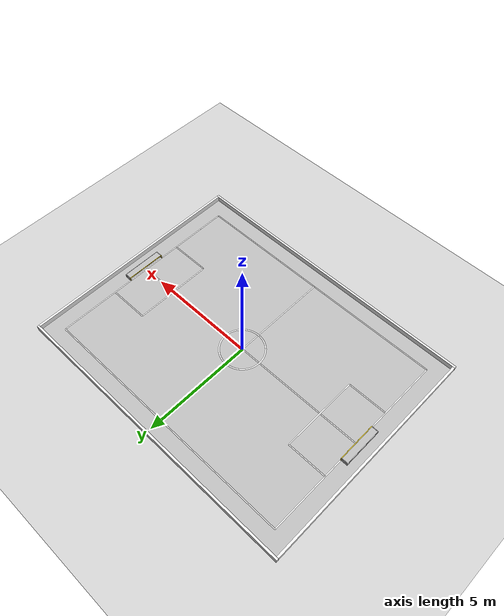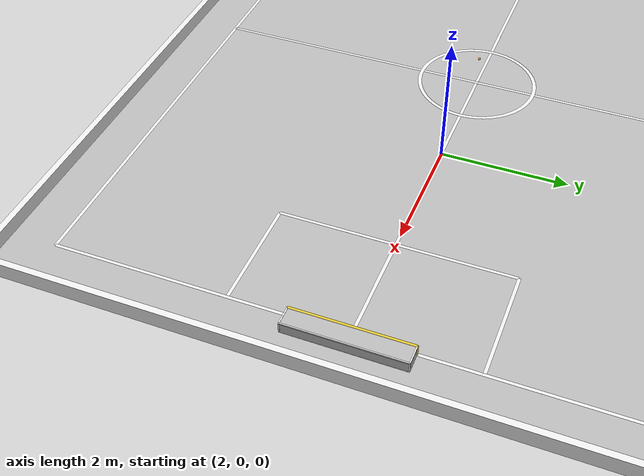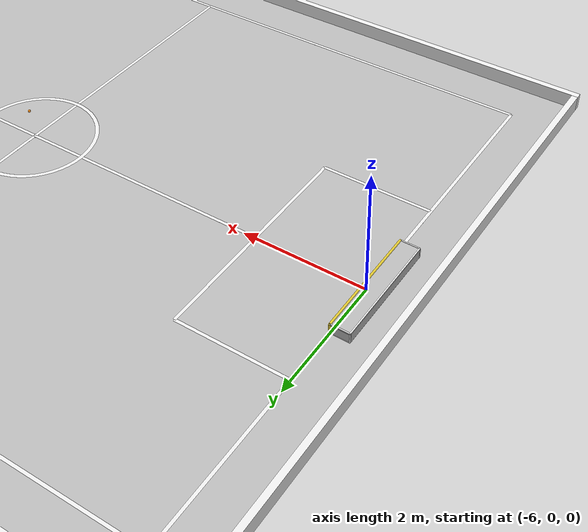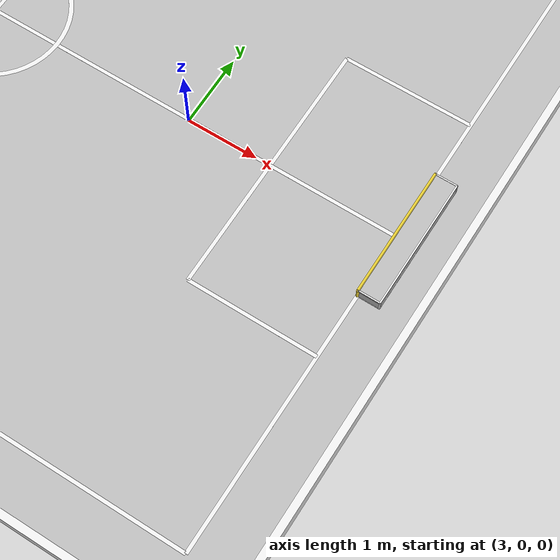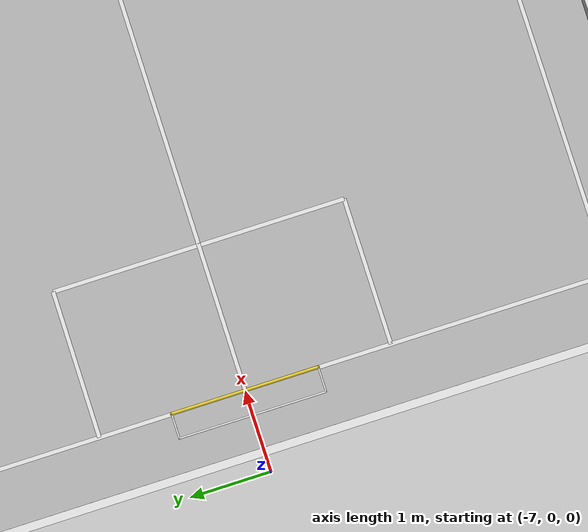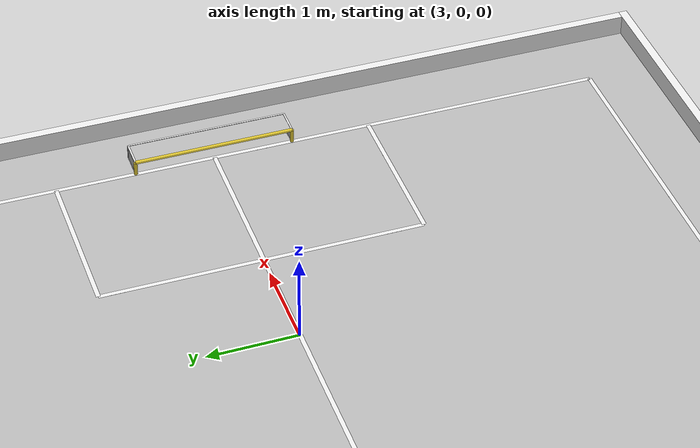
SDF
<?xml version="1.0" ?>
<sdf version="1.4">
  <world name="default">
    <include>
      <uri>model://ground_plane</uri>
    </include>
    <include>
      <uri>model://sun</uri>
    </include>
    <include>
      <uri>model://ssl_field</uri>
      <name>ssl_field_A</name>
      <pose>0 0 0 0 0 0</pose>
    </include>

    <!-- use ctrl+k+u to uncomment selected block
    use ctrl+k+c to comment selected block -->

    <include>
      <uri>model://ssl_goal</uri>
      <name>ssl_goal_1</name>
      <pose>-6 0 0 0 0 3.14</pose>
    </include>
    <include>
      <uri>model://ssl_goal</uri>
      <name>ssl_goal_2</name>
      <pose>6 0 0 0 0 0</pose>
    </include>
    <include>
      <uri>model://ssl_ball</uri>
      <name>ssl_ball_1</name>
      <pose>0 0 0.5 0 0 0</pose>
    </include>
  </world>
</sdf>

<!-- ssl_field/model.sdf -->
<sdf version="1.5">
  <model name="Robocup SSL Field">
    <static>true</static>
    <link name="field">
      <pose>0 0 0.01 0 0 0</pose>
      <collision name="collision">
        <geometry>
          <plane>
            <normal>0 0 1</normal>
            <size>13.40 10.40</size>
          </plane>
        </geometry>
        <surface>
          <friction>
            <ode>
              <mu>100</mu>
              <mu2>50</mu2>
            </ode>
          </friction>
        </surface>
      </collision>
      <visual name="carpet">
        <cast_shadows>false</cast_shadows>
        <geometry>
          <plane>
            <normal>0 0 1</normal>
            <size>13.40 10.40</size>
          </plane>
        </geometry>
        <material>
          <script>
            <uri>model://robocup09_spl_field/materials/scripts/</uri>
            <uri>model://robocup09_spl_field/materials/textures/</uri>
            <name>RoboCup/Carpet</name>
          </script>
        </material>
      </visual>
      <visual name="sideline_1">
        <pose>0 4.5 0.011 0 0 0</pose>
        <cast_shadows>false</cast_shadows>
        <geometry>
          <plane>
            <normal>0 0 1</normal>
            <size>12.00 0.05</size>
          </plane>
        </geometry>
        <material>
          <script>
            <uri>file://media/materials/scripts/gazebo.material</uri>
            <name>Gazebo/White</name>
          </script>
        </material>
      </visual>
      <visual name="sideline_2">
        <pose>0 -4.5 0.011 0 0 0</pose>
        <cast_shadows>false</cast_shadows>
        <geometry>
          <plane>
            <normal>0 0 1</normal>
            <size>12.00 0.05</size>
          </plane>
        </geometry>
        <material>
          <script>
            <uri>file://media/materials/scripts/gazebo.material</uri>
            <name>Gazebo/White</name>
          </script>
        </material>
      </visual>
      <visual name="sideline_mid">
        <pose>0 0 0.011 0 0 0</pose>
        <cast_shadows>false</cast_shadows>
        <geometry>
          <plane>
            <normal>0 0 1</normal>
            <size>12.00 0.05</size>
          </plane>
        </geometry>
        <material>
          <script>
            <uri>file://media/materials/scripts/gazebo.material</uri>
            <name>Gazebo/White</name>
          </script>
        </material>
      </visual>
      <visual name="endline_1">
        <pose>6 0 0.011 0 0 0</pose>
        <cast_shadows>false</cast_shadows>
        <geometry>
          <plane>
            <normal>0 0 1</normal>
            <size>0.05 9.00</size>
          </plane>
        </geometry>
        <material>
          <script>
            <uri>file://media/materials/scripts/gazebo.material</uri>
            <name>Gazebo/White</name>
          </script>
        </material>
      </visual>
      <visual name="endline_2">
        <pose>-6 0 0.011 0 0 0</pose>
        <cast_shadows>false</cast_shadows>
        <geometry>
          <plane>
            <normal>0 0 1</normal>
            <size>0.05 9.00</size>
          </plane>
        </geometry>
        <material>
          <script>
            <uri>file://media/materials/scripts/gazebo.material</uri>
            <name>Gazebo/White</name>
          </script>
        </material>
      </visual>
      <visual name="halfway_line">
        <pose>0 0 0.011 0 0 0</pose>
        <cast_shadows>false</cast_shadows>
        <geometry>
          <plane>
            <normal>0 0 1</normal>
            <size>0.05 9.00</size>
          </plane>
        </geometry>
        <material>
          <script>
            <uri>file://media/materials/scripts/gazebo.material</uri>
            <name>Gazebo/White</name>
          </script>
        </material>
      </visual>
      <visual name="area_1_line_a">
        <pose>-4.2 0 0.011 0 0 0</pose>
        <cast_shadows>false</cast_shadows>
        <geometry>
          <plane>
            <normal>0 0 1</normal>
            <size>0.05 3.6</size>
          </plane>
        </geometry>
        <material>
          <script>
            <uri>file://media/materials/scripts/gazebo.material</uri>
            <name>Gazebo/White</name>
          </script>
        </material>
      </visual>
      <visual name="area_2_line_a">
        <pose>-5.1 1.80 0.011 0 0 0</pose>
        <cast_shadows>false</cast_shadows>
        <geometry>
          <plane>
            <normal>0 0 1</normal>
            <size>1.80 0.05</size>
          </plane>
        </geometry>
        <material>
          <script>
            <uri>file://media/materials/scripts/gazebo.material</uri>
            <name>Gazebo/White</name>
          </script>
        </material>
      </visual>
      <visual name="area_3_line_a">
        <pose>-5.1 -1.80 0.011 0 0 0</pose>
        <cast_shadows>false</cast_shadows>
        <geometry>
          <plane>
            <normal>0 0 1</normal>
            <size>1.80 0.05</size>
          </plane>
        </geometry>
        <material>
          <script>
            <uri>file://media/materials/scripts/gazebo.material</uri>
            <name>Gazebo/White</name>
          </script>
        </material>
      </visual>
      <visual name="area_1_line_b">
        <pose>4.20 0 0.011 0 0 0</pose>
        <cast_shadows>false</cast_shadows>
        <geometry>
          <plane>
            <normal>0 0 1</normal>
            <size>0.05 3.6</size>
          </plane>
        </geometry>
        <material>
          <script>
            <uri>file://media/materials/scripts/gazebo.material</uri>
            <name>Gazebo/White</name>
          </script>
        </material>
      </visual>
      <visual name="area_2_line_b">
        <pose>5.1 1.80 0.011 0 0 0</pose>
        <cast_shadows>false</cast_shadows>
        <geometry>
          <plane>
            <normal>0 0 1</normal>
            <size>1.80 0.05</size>
          </plane>
        </geometry>
        <material>
          <script>
            <uri>file://media/materials/scripts/gazebo.material</uri>
            <name>Gazebo/White</name>
          </script>
        </material>
      </visual>
      <visual name="area_3_line_b">
        <pose>5.1 -1.80 0.011 0 0 0</pose>
        <cast_shadows>false</cast_shadows>
        <geometry>
          <plane>
            <normal>0 0 1</normal>
            <size>1.80 0.05</size>
          </plane>
        </geometry>
        <material>
          <script>
            <uri>file://media/materials/scripts/gazebo.material</uri>
            <name>Gazebo/White</name>
          </script>
        </material>
      </visual>

      <visual name="center_point">
        <pose>0 0 0.01 0 0 0</pose>
        <cast_shadows>false</cast_shadows>
        <geometry>
          <cylinder>
            <radius>0.05</radius>
            <length>0.0005</length>
          </cylinder>
        </geometry>
        <material>
          <script>
            <uri>file://media/materials/scripts/gazebo.material</uri>
            <name>Gazebo/White</name>
          </script>
        </material>
      </visual>
      <visual name="center_circle">
        <pose>0 0 0.005 0 0 0</pose>
        <cast_shadows>false</cast_shadows>
        <geometry>
          <mesh>
            <scale>1.3 1.3 0.75</scale>
            <uri>model://robocup14_spl_field/meshes/circle.dae</uri>
          </mesh>
        </geometry>
        <material>
          <script>
            <uri>file://media/materials/scripts/gazebo.material</uri>
            <name>Gazebo/White</name>
          </script>
        </material>
      </visual>
    </link>
    <link name="left_barrier">
      <pose>-6.75 0 0 0 0 0</pose>
      <collision name="collision">
        <geometry>
          <box>
            <size>0.1 10.4 0.5</size>
          </box>
        </geometry>
      </collision>
      <visual name="visual">
        <geometry>
          <box>
            <size>0.1 10.4 0.5</size>
          </box>
        </geometry>
        <material>
          <script>
            <uri>file://media/materials/scripts/gazebo.material</uri>
            <name>Gazebo/White</name>
          </script>
        </material>
      </visual>
    </link>
    <link name="right_barrier">
      <pose>6.75 0 0 0 0 0</pose>
      <collision name="collision">
        <geometry>
          <box>
            <size>0.1 10.4 0.5</size>
          </box>
        </geometry>
      </collision>
      <visual name="visual">
        <geometry>
          <box>
            <size>0.1 10.4 0.5</size>
          </box>
        </geometry>
        <material>
          <script>
            <uri>file://media/materials/scripts/gazebo.material</uri>
            <name>Gazebo/White</name>
          </script>
        </material>
      </visual>
    </link>
    <link name="front_barrier">
      <pose>0 5.25 0 0 0 0</pose>
      <collision name="collision">
        <geometry>
          <box>
            <size>13.6 0.1 0.5</size>
          </box>
        </geometry>
      </collision>
      <visual name="visual">
        <geometry>
          <box>
            <size>13.6 0.1 0.5</size>
          </box>
        </geometry>
        <material>
          <script>
            <uri>file://media/materials/scripts/gazebo.material</uri>
            <name>Gazebo/White</name>
          </script>
        </material>
      </visual>
    </link>
    <link name="back_barrier">
      <pose>0 -5.25 0 0 0 0</pose>
      <collision name="collision">
        <geometry>
          <box>
            <size>13.6 0.1 0.5</size>
          </box>
        </geometry>
      </collision>
      <visual name="visual">
        <geometry>
          <box>
            <size>13.6 0.1 0.5</size>
          </box>
        </geometry>
        <material>
          <script>
            <uri>file://media/materials/scripts/gazebo.material</uri>
            <name>Gazebo/White</name>
          </script>
        </material>
      </visual>
    </link>
  </model>
</sdf>

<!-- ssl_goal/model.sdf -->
<sdf version="1.5">
  <model name="SSL Fields">
    <static>true</static>
    <link name="left_post">
      <pose>0 0.9 0.09 0 0 0</pose>
      <collision name="collision">
        <geometry>
          <cylinder>
            <radius>0.02</radius>
            <length>0.18</length>
          </cylinder>
        </geometry>
      </collision>
      <visual name="visual">
        <geometry>
          <cylinder>
            <radius>0.02</radius>
            <length>0.18</length>
          </cylinder>
        </geometry>
        <material>
          <script>
            <uri>file://media/materials/scripts/gazebo.material</uri>
            <name>Gazebo/ZincYellow</name>
          </script>
        </material>
      </visual>
    </link>
    <link name="left_support_horiz_lower">
      <pose>0.15 0.9 0.01 0 0 0</pose>
      <collision name="collision">
        <geometry>
          <box>
            <size>0.3 0.02 0.02</size>
          </box>
        </geometry>
      </collision>
      <visual name="visual">
        <geometry>
          <box>
            <size>0.3 0.02 0.02</size>
          </box>
        </geometry>
        <material>
          <script>
            <uri>file://media/materials/scripts/gazebo.material</uri>
            <name>Gazebo/White</name>
          </script>
        </material>
      </visual>
    </link>
    <link name="left_support_horiz_upper">
      <pose>0.15 0.9 0.18 0 0 0</pose>
      <collision name="collision">
        <geometry>
          <box>
            <size>0.3 0.02 0.02</size>
          </box>
        </geometry>
      </collision>
      <visual name="visual">
        <geometry>
          <box>
            <size>0.3 0.02 0.02</size>
          </box>
        </geometry>
        <material>
          <script>
            <uri>file://media/materials/scripts/gazebo.material</uri>
            <name>Gazebo/White</name>
          </script>
        </material>
      </visual>
    </link>
    <link name="left_support_vertical">
      <pose>0.3 0.9 0.09 0 1.578 0</pose>
      <collision name="collision">
        <geometry>
          <box>
            <size>0.18 0.02 0.02</size>
          </box>
        </geometry>
      </collision>
      <visual name="visual">
        <geometry>
          <box>
            <size>0.18 0.02 0.02</size>
          </box>
        </geometry>
        <material>
          <script>
            <uri>file://media/materials/scripts/gazebo.material</uri>
            <name>Gazebo/White</name>
          </script>
        </material>
      </visual>
    </link>
    <link name="right_support_horiz_lower">
      <pose>0.15 -0.9 0.01 0 0 0</pose>
      <collision name="collision">
        <geometry>
          <box>
            <size>0.3 0.02 0.02</size>
          </box>
        </geometry>
      </collision>
      <visual name="visual">
        <geometry>
          <box>
            <size>0.3 0.02 0.02</size>
          </box>
        </geometry>
        <material>
          <script>
            <uri>file://media/materials/scripts/gazebo.material</uri>
            <name>Gazebo/White</name>
          </script>
        </material>
      </visual>
    </link>
    <link name="right_support_horiz_upper">
      <pose>0.15 -0.9 0.18 0 0 0</pose>
      <collision name="collision">
        <geometry>
          <box>
            <size>0.3 0.02 0.02</size>
          </box>
        </geometry>
      </collision>
      <visual name="visual">
        <geometry>
          <box>
            <size>0.3 0.02 0.02</size>
          </box>
        </geometry>
        <material>
          <script>
            <uri>file://media/materials/scripts/gazebo.material</uri>
            <name>Gazebo/White</name>
          </script>
        </material>
      </visual>
    </link>
    <link name="right_support_vertical">
      <pose>0.3 -0.9 0.09 0 1.578 0</pose>
      <collision name="collision">
        <geometry>
          <box>
            <size>0.18 0.02 0.02</size>
          </box>
        </geometry>
      </collision>
      <visual name="visual">
        <geometry>
          <box>
            <size>0.18 0.02 0.02</size>
          </box>
        </geometry>
        <material>
          <script>
            <uri>file://media/materials/scripts/gazebo.material</uri>
            <name>Gazebo/White</name>
          </script>
        </material>
      </visual>
    </link>
    <link name="center_support_horiz_lower">
      <pose>0.3 0 0.01 0 1.578 0</pose>
      <collision name="collision">
        <geometry>
          <box>
            <size>0.02 1.8 0.02</size>
          </box>
        </geometry>
      </collision>
      <visual name="visual">
        <geometry>
          <box>
            <size>0.02 1.8 0.02</size>
          </box>
        </geometry>
        <material>
          <script>
            <uri>file://media/materials/scripts/gazebo.material</uri>
            <name>Gazebo/White</name>
          </script>
        </material>
      </visual>
    </link>
    <link name="center_support_horiz_upper">
      <pose>0.3 0 0.18 0 1.578 0</pose>
      <collision name="collision">
        <geometry>
          <box>
            <size>0.02 1.8 0.02</size>
          </box>
        </geometry>
      </collision>
      <visual name="visual">
        <geometry>
          <box>
            <size>0.02 1.8 0.02</size>
          </box>
        </geometry>
        <material>
          <script>
            <uri>file://media/materials/scripts/gazebo.material</uri>
            <name>Gazebo/White</name>
          </script>
        </material>
      </visual>
    </link>
    <link name="right_post">
      <pose>0 -0.9 0.09 0 0 0</pose>
      <collision name="collision">
        <geometry>
          <cylinder>
            <radius>0.02</radius>
            <length>0.18</length>
          </cylinder>
        </geometry>
      </collision>
      <visual name="visual">
        <geometry>
          <cylinder>
            <radius>0.02</radius>
            <length>0.18</length>
          </cylinder>
        </geometry>
        <material>
          <script>
            <uri>file://media/materials/scripts/gazebo.material</uri>
            <name>Gazebo/ZincYellow</name>
          </script>
        </material>
      </visual>
    </link>
    <link name="crossbar">
      <pose>0 0 0.18 1.57 1.57 0</pose>
      <collision name="collision">
        <geometry>
          <cylinder>
            <radius>0.02</radius>
            <length>1.8</length>
          </cylinder>
        </geometry>
      </collision>
      <visual name="visual">
        <geometry>
          <cylinder>
            <radius>0.02</radius>
            <length>1.8</length>
          </cylinder>
        </geometry>
        <material>
          <script>
            <uri>file://media/materials/scripts/gazebo.material</uri>
            <name>Gazebo/ZincYellow</name>
          </script>
        </material>
      </visual>
    </link>
    <link name="upper_net">
      <pose>0.15 0 0.18 0 0 0</pose>
      <collision name="collision">
        <geometry>
          <box>
            <size>0.3 1.8 0.01</size>
          </box>
        </geometry>
      </collision>
      <visual name="visual">
        <geometry>
          <box>
            <size>0.3 1.8 0.01</size>
          </box>
        </geometry>
        <material>
          <script>
            <uri>model://robocup09_spl_field/materials/scripts/</uri>
            <uri>model://robocup09_spl_field/materials/textures/</uri>
            <name>RoboCup/Net</name>
          </script>
        </material>
      </visual>
    </link>
    <link name="center_net">
      <pose>0.3 0 0.09 0 0 0</pose>
      <collision name="collision">
        <geometry>
          <box>
            <size>0.01 1.8 0.18</size>
          </box>
        </geometry>
      </collision>
      <visual name="visual">
        <geometry>
          <box>
            <size>0.01 1.8 0.18</size>
          </box>
        </geometry>
        <material>
          <script>
            <uri>model://robocup09_spl_field/materials/scripts/</uri>
            <uri>model://robocup09_spl_field/materials/textures/</uri>
            <name>RoboCup/Net</name>
          </script>
        </material>
      </visual>
    </link>
    <link name="left_net">
      <pose>0.15 0.9 0.09 0 0 0</pose>
      <collision name="collision">
        <geometry>
          <box>
            <size>0.3 0.01 0.18</size>
          </box>
        </geometry>
      </collision>
      <visual name="visual">
        <geometry>
          <box>
            <size>0.3 0.01 0.18</size>
          </box>
        </geometry>
        <material>
          <script>
            <uri>model://robocup09_spl_field/materials/scripts/</uri>
            <uri>model://robocup09_spl_field/materials/textures/</uri>
            <name>RoboCup/Net</name>
          </script>
        </material>
      </visual>
    </link>
    <link name="right_net">
      <pose>0.15 -0.9 0.09 0 0 0</pose>
      <collision name="collision">
        <geometry>
          <box>
            <size>0.3 0.01 0.18</size>
          </box>
        </geometry>
      </collision>
      <visual name="visual">
        <geometry>
          <box>
            <size>0.3 0.01 0.18</size>
          </box>
        </geometry>
        <material>
          <script>
            <uri>model://robocup09_spl_field/materials/scripts/</uri>
            <uri>model://robocup09_spl_field/materials/textures/</uri>
            <name>RoboCup/Net</name>
          </script>
        </material>
      </visual>
    </link>
  </model>
</sdf>

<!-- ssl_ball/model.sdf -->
<sdf version="1.5">
  <model name="RoboCup SSL Ball">
    <static>false</static>
    <link name="ball">
      <inertial>
        <mass>0.046</mass>
        <!-- inertia based on solid sphere 2/5 mr^2 -->
        <inertia>
          <ixx>2.37e-6</ixx>
          <iyy>2.37e-6</iyy>
          <izz>2.37e-6</izz>
          <ixy>0</ixy>
          <ixz>0</ixz>
          <iyz>0</iyz>
        </inertia>
      </inertial>
      <collision name="collision">
        <geometry>
          <sphere>
            <radius>0.0215</radius>
          </sphere>
        </geometry>
      </collision>
      <visual name="visual">
        <geometry>
          <sphere>
            <radius>0.0215</radius>
          </sphere>
        </geometry>
        <material>
          <script>
            <uri>file://media/materials/scripts/gazebo.material</uri>
            <name>Gazebo/Orange</name>
          </script>
        </material>
      </visual>
    </link>
  </model>
</sdf>
